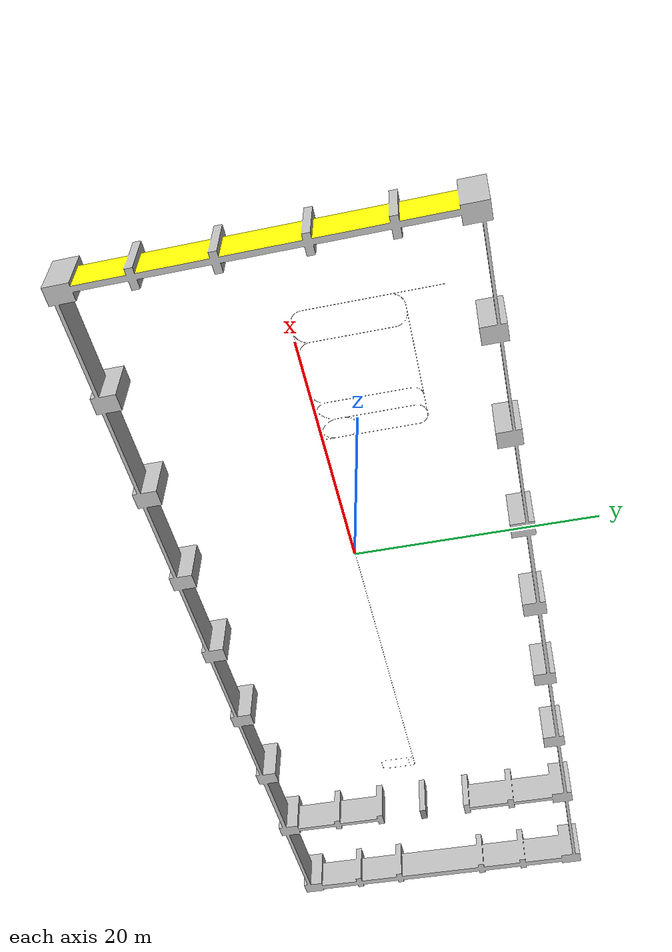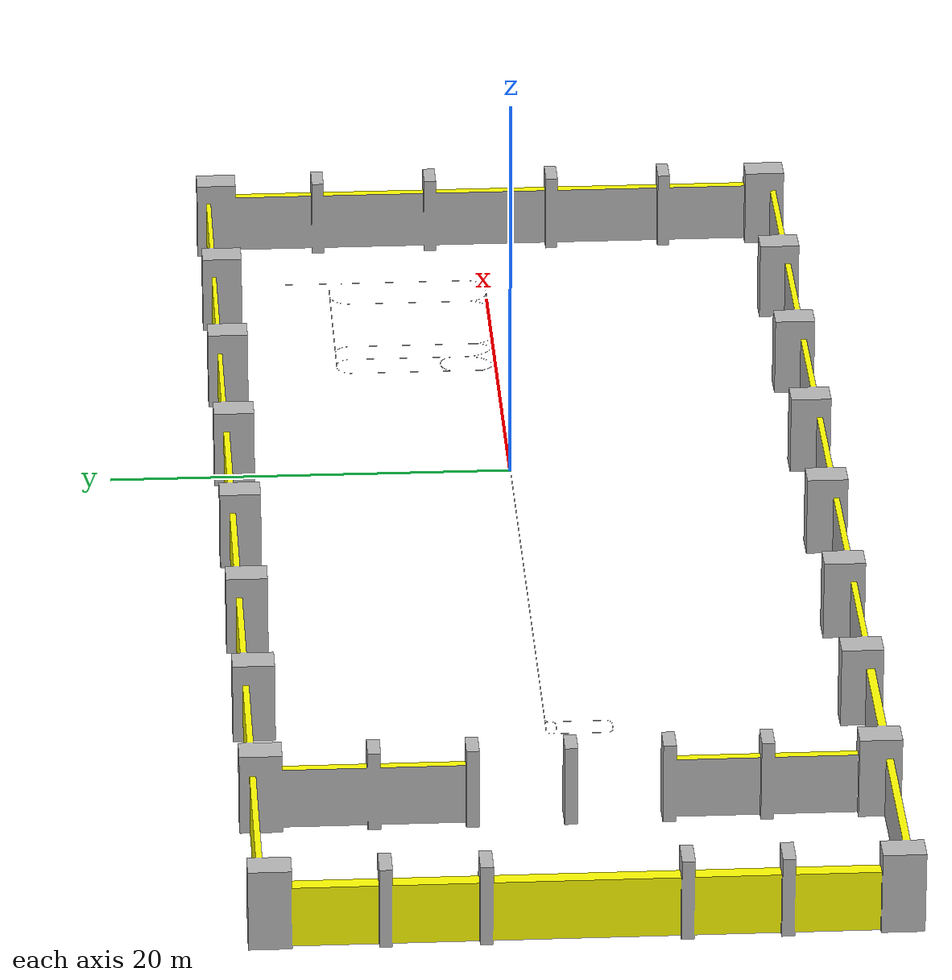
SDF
<?xml version="1.0" ?>
<sdf version="1.5">
  <model name="dsa_hall">
    <static>true</static>
    <link name="walls">
      <collision name="collision">
        <geometry>
          <mesh>
            <uri>model://dsa_hall/collada/DSA-Halle.dae</uri>
          </mesh>
        </geometry>
      </collision>
      <visual name="visual">
        <geometry>
          <mesh>
            <uri>model://dsa_hall/collada/DSA-Halle.dae</uri>
          </mesh>
        </geometry>
        <cast_shadows>false</cast_shadows>
      </visual>
    </link>
  </model>
</sdf>
